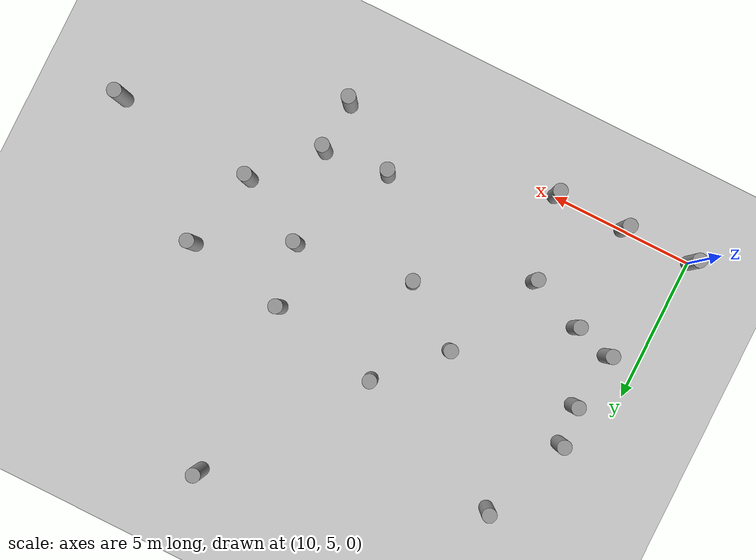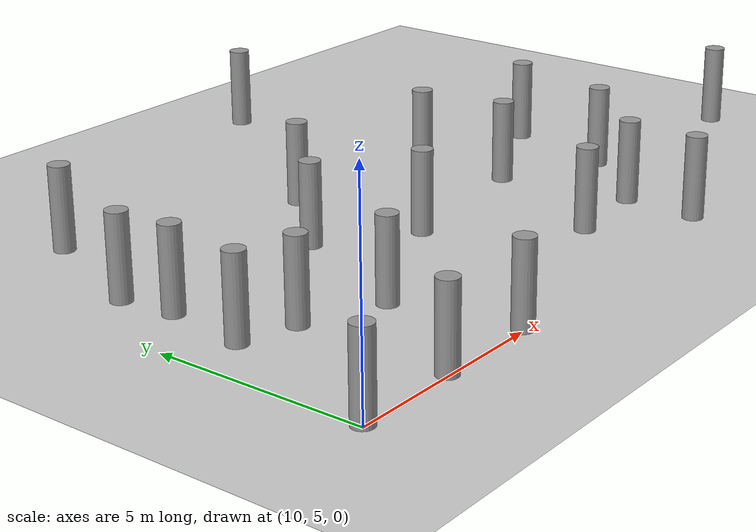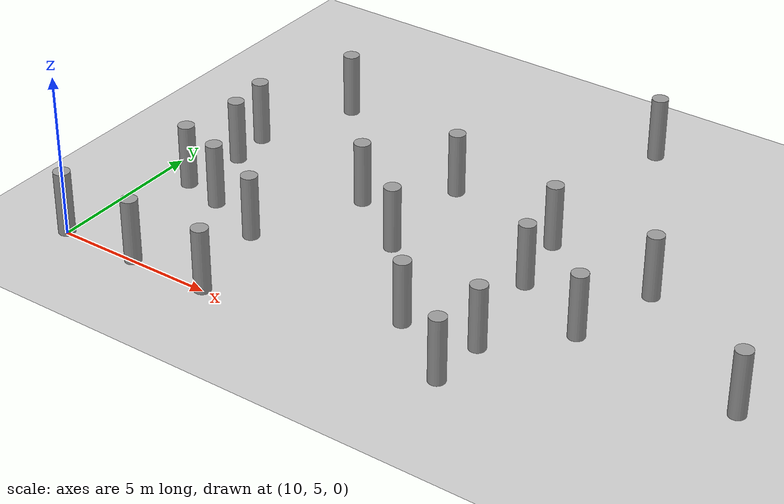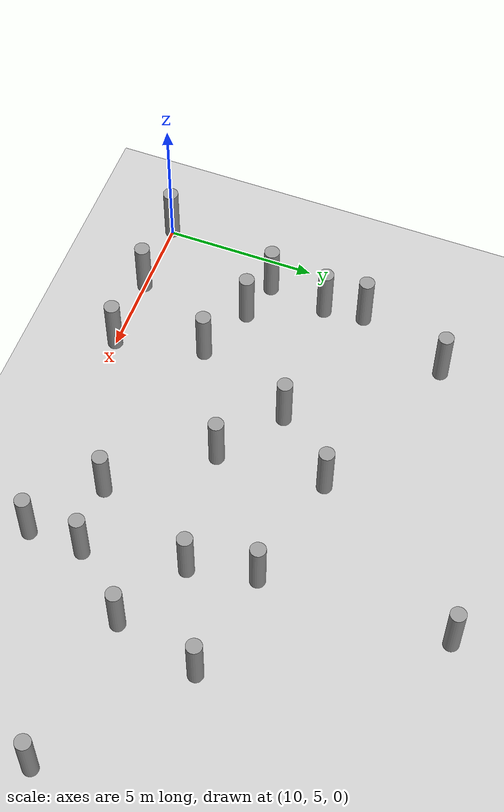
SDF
<sdf version="1.6">
 <world name="default">
  <model name="ground_plane">
   <static>1</static>
   <link name="link">
    <collision name="collision">
     <geometry><plane><normal>0 0 1</normal><size>100 100</size></plane></geometry>
     <surface><friction><ode><mu>100</mu><mu2>50</mu2></ode></friction></surface>
    </collision>
    <visual name="visual">
     <cast_shadows>0</cast_shadows>
     <geometry><plane><normal>0 0 1</normal><size>100 100</size></plane></geometry>
     <material>
      <script><uri>file://media/materials/scripts/gazebo.material</uri><name>Gazebo/Grey</name></script>
     </material>
    </visual>
   </link>
  </model>
  <model name="vps_sim_obstacle_13">
   <link name="link">
    <inertial>
     <mass>1</mass>
     <inertia><ixx>0.145833</ixx><ixy>0</ixy><ixz>0</ixz><iyy>0.145833</iyy><iyz>0</iyz><izz>0.125</izz></inertia>
    </inertial>
    <visual name="visual">
     <geometry><cylinder><radius>0.25</radius><length>2</length></cylinder></geometry>
     <material>
      <script><name>Gazebo/Grey</name><uri>file://media/materials/scripts/gazebo.material</uri></script>
      <ambient>0.3 0.3 0.3 1</ambient>
      <diffuse>0.7 0.7 0.7 1</diffuse>
      <specular>0.01 0.01 0.01 1</specular>
      <emissive>0 0 0 1</emissive>
      <shader type="vertex"><normal_map>__default__</normal_map></shader>
     </material>
    </visual>
    <collision name="collision">
     <geometry><cylinder><radius>0.25</radius><length>2</length></cylinder></geometry>
     <surface>
      <friction>
       <ode><mu>1</mu><mu2>1</mu2><fdir1>0 0 0</fdir1><slip1>0</slip1><slip2>0</slip2></ode>
       <torsional>
        <coefficient>1</coefficient>
        <patch_radius>0</patch_radius>
        <surface_radius>0</surface_radius>
        <use_patch_radius>1</use_patch_radius>
        <ode><slip>0</slip></ode>
       </torsional>
      </friction>
      <bounce><restitution_coefficient>0</restitution_coefficient><threshold>1e+06</threshold></bounce>
      <contact>
       <collide_without_contact>0</collide_without_contact>
       <collide_without_contact_bitmask>1</collide_without_contact_bitmask>
       <collide_bitmask>1</collide_bitmask>
       <ode>
        <soft_cfm>0</soft_cfm>
        <soft_erp>0.2</soft_erp>
        <kp>1e+13</kp>
        <kd>1</kd>
        <max_vel>0.01</max_vel>
        <min_depth>0</min_depth>
       </ode>
       <bullet>
        <split_impulse>1</split_impulse>
        <split_impulse_penetration_threshold>-0.01</split_impulse_penetration_threshold>
        <soft_cfm>0</soft_cfm>
        <soft_erp>0.2</soft_erp>
        <kp>1e+13</kp>
        <kd>1</kd>
       </bullet>
      </contact>
     </surface>
    </collision>
   </link>
   <static>0</static>
   <pose>10.002 4.9978 1.04998 1e-06 6e-06 0.043152</pose>
  </model>
  <model name="vps_sim_obstacle_14">
   <link name="link">
    <inertial>
     <mass>1</mass>
     <inertia><ixx>0.145833</ixx><ixy>0</ixy><ixz>0</ixz><iyy>0.145833</iyy><iyz>0</iyz><izz>0.125</izz></inertia>
    </inertial>
    <visual name="visual">
     <geometry><cylinder><radius>0.25</radius><length>2</length></cylinder></geometry>
     <material>
      <script><name>Gazebo/Grey</name><uri>file://media/materials/scripts/gazebo.material</uri></script>
      <ambient>0.3 0.3 0.3 1</ambient>
      <diffuse>0.7 0.7 0.7 1</diffuse>
      <specular>0.01 0.01 0.01 1</specular>
      <emissive>0 0 0 1</emissive>
      <shader type="vertex"><normal_map>__default__</normal_map></shader>
     </material>
    </visual>
    <collision name="collision">
     <geometry><cylinder><radius>0.25</radius><length>2</length></cylinder></geometry>
     <surface>
      <friction>
       <ode><mu>1</mu><mu2>1</mu2><fdir1>0 0 0</fdir1><slip1>0</slip1><slip2>0</slip2></ode>
       <torsional>
        <coefficient>1</coefficient>
        <patch_radius>0</patch_radius>
        <surface_radius>0</surface_radius>
        <use_patch_radius>1</use_patch_radius>
        <ode><slip>0</slip></ode>
       </torsional>
      </friction>
      <bounce><restitution_coefficient>0</restitution_coefficient><threshold>1e+06</threshold></bounce>
      <contact>
       <collide_without_contact>0</collide_without_contact>
       <collide_without_contact_bitmask>1</collide_without_contact_bitmask>
       <collide_bitmask>1</collide_bitmask>
       <ode>
        <soft_cfm>0</soft_cfm>
        <soft_erp>0.2</soft_erp>
        <kp>1e+13</kp>
        <kd>1</kd>
        <max_vel>0.01</max_vel>
        <min_depth>0</min_depth>
       </ode>
       <bullet>
        <split_impulse>1</split_impulse>
        <split_impulse_penetration_threshold>-0.01</split_impulse_penetration_threshold>
        <soft_cfm>0</soft_cfm>
        <soft_erp>0.2</soft_erp>
        <kp>1e+13</kp>
        <kd>1</kd>
       </bullet>
      </contact>
     </surface>
    </collision>
   </link>
   <static>0</static>
   <pose>12.5021 4.99784 1.04997 3e-05 -3.4e-05 0.041339</pose>
  </model>
  <model name="vps_sim_obstacle_15">
   <link name="link">
    <inertial>
     <mass>1</mass>
     <inertia><ixx>0.145833</ixx><ixy>0</ixy><ixz>0</ixz><iyy>0.145833</iyy><iyz>0</iyz><izz>0.125</izz></inertia>
    </inertial>
    <visual name="visual">
     <geometry><cylinder><radius>0.25</radius><length>2</length></cylinder></geometry>
     <material>
      <script><name>Gazebo/Grey</name><uri>file://media/materials/scripts/gazebo.material</uri></script>
      <ambient>0.3 0.3 0.3 1</ambient>
      <diffuse>0.7 0.7 0.7 1</diffuse>
      <specular>0.01 0.01 0.01 1</specular>
      <emissive>0 0 0 1</emissive>
      <shader type="vertex"><normal_map>__default__</normal_map></shader>
     </material>
    </visual>
    <collision name="collision">
     <geometry><cylinder><radius>0.25</radius><length>2</length></cylinder></geometry>
     <surface>
      <friction>
       <ode><mu>1</mu><mu2>1</mu2><fdir1>0 0 0</fdir1><slip1>0</slip1><slip2>0</slip2></ode>
       <torsional>
        <coefficient>1</coefficient>
        <patch_radius>0</patch_radius>
        <surface_radius>0</surface_radius>
        <use_patch_radius>1</use_patch_radius>
        <ode><slip>0</slip></ode>
       </torsional>
      </friction>
      <bounce><restitution_coefficient>0</restitution_coefficient><threshold>1e+06</threshold></bounce>
      <contact>
       <collide_without_contact>0</collide_without_contact>
       <collide_without_contact_bitmask>1</collide_without_contact_bitmask>
       <collide_bitmask>1</collide_bitmask>
       <ode>
        <soft_cfm>0</soft_cfm>
        <soft_erp>0.2</soft_erp>
        <kp>1e+13</kp>
        <kd>1</kd>
        <max_vel>0.01</max_vel>
        <min_depth>0</min_depth>
       </ode>
       <bullet>
        <split_impulse>1</split_impulse>
        <split_impulse_penetration_threshold>-0.01</split_impulse_penetration_threshold>
        <soft_cfm>0</soft_cfm>
        <soft_erp>0.2</soft_erp>
        <kp>1e+13</kp>
        <kd>1</kd>
       </bullet>
      </contact>
     </surface>
    </collision>
   </link>
   <static>0</static>
   <pose>15.0152 4.99462 1.05001 -1.5e-05 1.9e-05 0.050964</pose>
  </model>
  <model name="vps_sim_obstacle_17">
   <link name="link">
    <inertial>
     <mass>1</mass>
     <inertia><ixx>0.145833</ixx><ixy>0</ixy><ixz>0</ixz><iyy>0.145833</iyy><iyz>0</iyz><izz>0.125</izz></inertia>
    </inertial>
    <visual name="visual">
     <geometry><cylinder><radius>0.25</radius><length>2</length></cylinder></geometry>
     <material>
      <script><name>Gazebo/Grey</name><uri>file://media/materials/scripts/gazebo.material</uri></script>
      <ambient>0.3 0.3 0.3 1</ambient>
      <diffuse>0.7 0.7 0.7 1</diffuse>
      <specular>0.01 0.01 0.01 1</specular>
      <emissive>0 0 0 1</emissive>
      <shader type="vertex"><normal_map>__default__</normal_map></shader>
     </material>
    </visual>
    <collision name="collision">
     <geometry><cylinder><radius>0.25</radius><length>2</length></cylinder></geometry>
     <surface>
      <friction>
       <ode><mu>1</mu><mu2>1</mu2><fdir1>0 0 0</fdir1><slip1>0</slip1><slip2>0</slip2></ode>
       <torsional>
        <coefficient>1</coefficient>
        <patch_radius>0</patch_radius>
        <surface_radius>0</surface_radius>
        <use_patch_radius>1</use_patch_radius>
        <ode><slip>0</slip></ode>
       </torsional>
      </friction>
      <bounce><restitution_coefficient>0</restitution_coefficient><threshold>1e+06</threshold></bounce>
      <contact>
       <collide_without_contact>0</collide_without_contact>
       <collide_without_contact_bitmask>1</collide_without_contact_bitmask>
       <collide_bitmask>1</collide_bitmask>
       <ode>
        <soft_cfm>0</soft_cfm>
        <soft_erp>0.2</soft_erp>
        <kp>1e+13</kp>
        <kd>1</kd>
        <max_vel>0.01</max_vel>
        <min_depth>0</min_depth>
       </ode>
       <bullet>
        <split_impulse>1</split_impulse>
        <split_impulse_penetration_threshold>-0.01</split_impulse_penetration_threshold>
        <soft_cfm>0</soft_cfm>
        <soft_erp>0.2</soft_erp>
        <kp>1e+13</kp>
        <kd>1</kd>
       </bullet>
      </contact>
     </surface>
    </collision>
   </link>
   <static>0</static>
   <pose>11.1253 9.02512 1.05 -7e-06 -1.4e-05 0.049007</pose>
  </model>
  <model name="vps_sim_obstacle_18">
   <link name="link">
    <inertial>
     <mass>1</mass>
     <inertia><ixx>0.145833</ixx><ixy>0</ixy><ixz>0</ixz><iyy>0.145833</iyy><iyz>0</iyz><izz>0.125</izz></inertia>
    </inertial>
    <visual name="visual">
     <geometry><cylinder><radius>0.25</radius><length>2</length></cylinder></geometry>
     <material>
      <script><name>Gazebo/Grey</name><uri>file://media/materials/scripts/gazebo.material</uri></script>
      <ambient>0.3 0.3 0.3 1</ambient>
      <diffuse>0.7 0.7 0.7 1</diffuse>
      <specular>0.01 0.01 0.01 1</specular>
      <emissive>0 0 0 1</emissive>
      <shader type="vertex"><normal_map>__default__</normal_map></shader>
     </material>
    </visual>
    <collision name="collision">
     <geometry><cylinder><radius>0.25</radius><length>2</length></cylinder></geometry>
     <surface>
      <friction>
       <ode><mu>1</mu><mu2>1</mu2><fdir1>0 0 0</fdir1><slip1>0</slip1><slip2>0</slip2></ode>
       <torsional>
        <coefficient>1</coefficient>
        <patch_radius>0</patch_radius>
        <surface_radius>0</surface_radius>
        <use_patch_radius>1</use_patch_radius>
        <ode><slip>0</slip></ode>
       </torsional>
      </friction>
      <bounce><restitution_coefficient>0</restitution_coefficient><threshold>1e+06</threshold></bounce>
      <contact>
       <collide_without_contact>0</collide_without_contact>
       <collide_without_contact_bitmask>1</collide_without_contact_bitmask>
       <collide_bitmask>1</collide_bitmask>
       <ode>
        <soft_cfm>0</soft_cfm>
        <soft_erp>0.2</soft_erp>
        <kp>1e+13</kp>
        <kd>1</kd>
        <max_vel>0.01</max_vel>
        <min_depth>0</min_depth>
       </ode>
       <bullet>
        <split_impulse>1</split_impulse>
        <split_impulse_penetration_threshold>-0.01</split_impulse_penetration_threshold>
        <soft_cfm>0</soft_cfm>
        <soft_erp>0.2</soft_erp>
        <kp>1e+13</kp>
        <kd>1</kd>
       </bullet>
      </contact>
     </surface>
    </collision>
   </link>
   <static>0</static>
   <pose>11.2269 12.3272 1.04999 2.4e-05 -3.2e-05 0.047547</pose>
  </model>
  <model name="vps_sim_obstacle_20">
   <link name="link">
    <inertial>
     <mass>1</mass>
     <inertia><ixx>0.145833</ixx><ixy>0</ixy><ixz>0</ixz><iyy>0.145833</iyy><iyz>0</iyz><izz>0.125</izz></inertia>
    </inertial>
    <visual name="visual">
     <geometry><cylinder><radius>0.25</radius><length>2</length></cylinder></geometry>
     <material>
      <script><name>Gazebo/Grey</name><uri>file://media/materials/scripts/gazebo.material</uri></script>
      <ambient>0.3 0.3 0.3 1</ambient>
      <diffuse>0.7 0.7 0.7 1</diffuse>
      <specular>0.01 0.01 0.01 1</specular>
      <emissive>0 0 0 1</emissive>
      <shader type="vertex"><normal_map>__default__</normal_map></shader>
     </material>
    </visual>
    <collision name="collision">
     <geometry><cylinder><radius>0.25</radius><length>2</length></cylinder></geometry>
     <surface>
      <friction>
       <ode><mu>1</mu><mu2>1</mu2><fdir1>0 0 0</fdir1><slip1>0</slip1><slip2>0</slip2></ode>
       <torsional>
        <coefficient>1</coefficient>
        <patch_radius>0</patch_radius>
        <surface_radius>0</surface_radius>
        <use_patch_radius>1</use_patch_radius>
        <ode><slip>0</slip></ode>
       </torsional>
      </friction>
      <bounce><restitution_coefficient>0</restitution_coefficient><threshold>1e+06</threshold></bounce>
      <contact>
       <collide_without_contact>0</collide_without_contact>
       <collide_without_contact_bitmask>1</collide_without_contact_bitmask>
       <collide_bitmask>1</collide_bitmask>
       <ode>
        <soft_cfm>0</soft_cfm>
        <soft_erp>0.2</soft_erp>
        <kp>1e+13</kp>
        <kd>1</kd>
        <max_vel>0.01</max_vel>
        <min_depth>0</min_depth>
       </ode>
       <bullet>
        <split_impulse>1</split_impulse>
        <split_impulse_penetration_threshold>-0.01</split_impulse_penetration_threshold>
        <soft_cfm>0</soft_cfm>
        <soft_erp>0.2</soft_erp>
        <kp>1e+13</kp>
        <kd>1</kd>
       </bullet>
      </contact>
     </surface>
    </collision>
   </link>
   <static>0</static>
   <pose>17.9721 9.71438 1.05 -5e-06 1.1e-05 0.029575</pose>
  </model>
  <model name="vps_sim_obstacle_22">
   <link name="link">
    <inertial>
     <mass>1</mass>
     <inertia><ixx>0.145833</ixx><ixy>0</ixy><ixz>0</ixz><iyy>0.145833</iyy><iyz>0</iyz><izz>0.125</izz></inertia>
    </inertial>
    <visual name="visual">
     <geometry><cylinder><radius>0.25</radius><length>2</length></cylinder></geometry>
     <material>
      <script><name>Gazebo/Grey</name><uri>file://media/materials/scripts/gazebo.material</uri></script>
      <ambient>0.3 0.3 0.3 1</ambient>
      <diffuse>0.7 0.7 0.7 1</diffuse>
      <specular>0.01 0.01 0.01 1</specular>
      <emissive>0 0 0 1</emissive>
      <shader type="vertex"><normal_map>__default__</normal_map></shader>
     </material>
    </visual>
    <collision name="collision">
     <geometry><cylinder><radius>0.25</radius><length>2</length></cylinder></geometry>
     <surface>
      <friction>
       <ode><mu>1</mu><mu2>1</mu2><fdir1>0 0 0</fdir1><slip1>0</slip1><slip2>0</slip2></ode>
       <torsional>
        <coefficient>1</coefficient>
        <patch_radius>0</patch_radius>
        <surface_radius>0</surface_radius>
        <use_patch_radius>1</use_patch_radius>
        <ode><slip>0</slip></ode>
       </torsional>
      </friction>
      <bounce><restitution_coefficient>0</restitution_coefficient><threshold>1e+06</threshold></bounce>
      <contact>
       <collide_without_contact>0</collide_without_contact>
       <collide_without_contact_bitmask>1</collide_without_contact_bitmask>
       <collide_bitmask>1</collide_bitmask>
       <ode>
        <soft_cfm>0</soft_cfm>
        <soft_erp>0.2</soft_erp>
        <kp>1e+13</kp>
        <kd>1</kd>
        <max_vel>0.01</max_vel>
        <min_depth>0</min_depth>
       </ode>
       <bullet>
        <split_impulse>1</split_impulse>
        <split_impulse_penetration_threshold>-0.01</split_impulse_penetration_threshold>
        <soft_cfm>0</soft_cfm>
        <soft_erp>0.2</soft_erp>
        <kp>1e+13</kp>
        <kd>1</kd>
       </bullet>
      </contact>
     </surface>
    </collision>
   </link>
   <static>0</static>
   <pose>17.7788 13.2236 1.04999 -2.3e-05 -1.9e-05 0.035346</pose>
  </model>
  <model name="vps_sim_obstacle_23">
   <link name="link">
    <inertial>
     <mass>1</mass>
     <inertia><ixx>0.145833</ixx><ixy>0</ixy><ixz>0</ixz><iyy>0.145833</iyy><iyz>0</iyz><izz>0.125</izz></inertia>
    </inertial>
    <visual name="visual">
     <geometry><cylinder><radius>0.25</radius><length>2</length></cylinder></geometry>
     <material>
      <script><name>Gazebo/Grey</name><uri>file://media/materials/scripts/gazebo.material</uri></script>
      <ambient>0.3 0.3 0.3 1</ambient>
      <diffuse>0.7 0.7 0.7 1</diffuse>
      <specular>0.01 0.01 0.01 1</specular>
      <emissive>0 0 0 1</emissive>
      <shader type="vertex"><normal_map>__default__</normal_map></shader>
     </material>
    </visual>
    <collision name="collision">
     <geometry><cylinder><radius>0.25</radius><length>2</length></cylinder></geometry>
     <surface>
      <friction>
       <ode><mu>1</mu><mu2>1</mu2><fdir1>0 0 0</fdir1><slip1>0</slip1><slip2>0</slip2></ode>
       <torsional>
        <coefficient>1</coefficient>
        <patch_radius>0</patch_radius>
        <surface_radius>0</surface_radius>
        <use_patch_radius>1</use_patch_radius>
        <ode><slip>0</slip></ode>
       </torsional>
      </friction>
      <bounce><restitution_coefficient>0</restitution_coefficient><threshold>1e+06</threshold></bounce>
      <contact>
       <collide_without_contact>0</collide_without_contact>
       <collide_without_contact_bitmask>1</collide_without_contact_bitmask>
       <collide_bitmask>1</collide_bitmask>
       <ode>
        <soft_cfm>0</soft_cfm>
        <soft_erp>0.2</soft_erp>
        <kp>1e+13</kp>
        <kd>1</kd>
        <max_vel>0.01</max_vel>
        <min_depth>0</min_depth>
       </ode>
       <bullet>
        <split_impulse>1</split_impulse>
        <split_impulse_penetration_threshold>-0.01</split_impulse_penetration_threshold>
        <soft_cfm>0</soft_cfm>
        <soft_erp>0.2</soft_erp>
        <kp>1e+13</kp>
        <kd>1</kd>
       </bullet>
      </contact>
     </surface>
    </collision>
   </link>
   <static>0</static>
   <pose>22.5474 7.10349 1.04997 -1.3e-05 1.5e-05 0.032547</pose>
  </model>
  <model name="vps_sim_obstacle_24">
   <link name="link">
    <inertial>
     <mass>1</mass>
     <inertia><ixx>0.145833</ixx><ixy>0</ixy><ixz>0</ixz><iyy>0.145833</iyy><iyz>0</iyz><izz>0.125</izz></inertia>
    </inertial>
    <visual name="visual">
     <geometry><cylinder><radius>0.25</radius><length>2</length></cylinder></geometry>
     <material>
      <script><name>Gazebo/Grey</name><uri>file://media/materials/scripts/gazebo.material</uri></script>
      <ambient>0.3 0.3 0.3 1</ambient>
      <diffuse>0.7 0.7 0.7 1</diffuse>
      <specular>0.01 0.01 0.01 1</specular>
      <emissive>0 0 0 1</emissive>
      <shader type="vertex"><normal_map>__default__</normal_map></shader>
     </material>
    </visual>
    <collision name="collision">
     <geometry><cylinder><radius>0.25</radius><length>2</length></cylinder></geometry>
     <surface>
      <friction>
       <ode><mu>1</mu><mu2>1</mu2><fdir1>0 0 0</fdir1><slip1>0</slip1><slip2>0</slip2></ode>
       <torsional>
        <coefficient>1</coefficient>
        <patch_radius>0</patch_radius>
        <surface_radius>0</surface_radius>
        <use_patch_radius>1</use_patch_radius>
        <ode><slip>0</slip></ode>
       </torsional>
      </friction>
      <bounce><restitution_coefficient>0</restitution_coefficient><threshold>1e+06</threshold></bounce>
      <contact>
       <collide_without_contact>0</collide_without_contact>
       <collide_without_contact_bitmask>1</collide_without_contact_bitmask>
       <collide_bitmask>1</collide_bitmask>
       <ode>
        <soft_cfm>0</soft_cfm>
        <soft_erp>0.2</soft_erp>
        <kp>1e+13</kp>
        <kd>1</kd>
        <max_vel>0.01</max_vel>
        <min_depth>0</min_depth>
       </ode>
       <bullet>
        <split_impulse>1</split_impulse>
        <split_impulse_penetration_threshold>-0.01</split_impulse_penetration_threshold>
        <soft_cfm>0</soft_cfm>
        <soft_erp>0.2</soft_erp>
        <kp>1e+13</kp>
        <kd>1</kd>
       </bullet>
      </contact>
     </surface>
    </collision>
   </link>
   <static>0</static>
   <pose>24.3732 9.05682 1.04997 1.8e-05 -2e-06 0.025335</pose>
  </model>
  <model name="vps_sim_obstacle_25">
   <link name="link">
    <inertial>
     <mass>1</mass>
     <inertia><ixx>0.145833</ixx><ixy>0</ixy><ixz>0</ixz><iyy>0.145833</iyy><iyz>0</iyz><izz>0.125</izz></inertia>
    </inertial>
    <visual name="visual">
     <geometry><cylinder><radius>0.25</radius><length>2</length></cylinder></geometry>
     <material>
      <script><name>Gazebo/Grey</name><uri>file://media/materials/scripts/gazebo.material</uri></script>
      <ambient>0.3 0.3 0.3 1</ambient>
      <diffuse>0.7 0.7 0.7 1</diffuse>
      <specular>0.01 0.01 0.01 1</specular>
      <emissive>0 0 0 1</emissive>
      <shader type="vertex"><normal_map>__default__</normal_map></shader>
     </material>
    </visual>
    <collision name="collision">
     <geometry><cylinder><radius>0.25</radius><length>2</length></cylinder></geometry>
     <surface>
      <friction>
       <ode><mu>1</mu><mu2>1</mu2><fdir1>0 0 0</fdir1><slip1>0</slip1><slip2>0</slip2></ode>
       <torsional>
        <coefficient>1</coefficient>
        <patch_radius>0</patch_radius>
        <surface_radius>0</surface_radius>
        <use_patch_radius>1</use_patch_radius>
        <ode><slip>0</slip></ode>
       </torsional>
      </friction>
      <bounce><restitution_coefficient>0</restitution_coefficient><threshold>1e+06</threshold></bounce>
      <contact>
       <collide_without_contact>0</collide_without_contact>
       <collide_without_contact_bitmask>1</collide_without_contact_bitmask>
       <collide_bitmask>1</collide_bitmask>
       <ode>
        <soft_cfm>0</soft_cfm>
        <soft_erp>0.2</soft_erp>
        <kp>1e+13</kp>
        <kd>1</kd>
        <max_vel>0.01</max_vel>
        <min_depth>0</min_depth>
       </ode>
       <bullet>
        <split_impulse>1</split_impulse>
        <split_impulse_penetration_threshold>-0.01</split_impulse_penetration_threshold>
        <soft_cfm>0</soft_cfm>
        <soft_erp>0.2</soft_erp>
        <kp>1e+13</kp>
        <kd>1</kd>
       </bullet>
      </contact>
     </surface>
    </collision>
   </link>
   <static>0</static>
   <pose>20.3128 6.8739 1.05 0 -1.2e-05 0.042014</pose>
  </model>
  <model name="vps_sim_obstacle_26">
   <link name="link">
    <inertial>
     <mass>1</mass>
     <inertia><ixx>0.145833</ixx><ixy>0</ixy><ixz>0</ixz><iyy>0.145833</iyy><iyz>0</iyz><izz>0.125</izz></inertia>
    </inertial>
    <visual name="visual">
     <geometry><cylinder><radius>0.25</radius><length>2</length></cylinder></geometry>
     <material>
      <script><name>Gazebo/Grey</name><uri>file://media/materials/scripts/gazebo.material</uri></script>
      <ambient>0.3 0.3 0.3 1</ambient>
      <diffuse>0.7 0.7 0.7 1</diffuse>
      <specular>0.01 0.01 0.01 1</specular>
      <emissive>0 0 0 1</emissive>
      <shader type="vertex"><normal_map>__default__</normal_map></shader>
     </material>
    </visual>
    <collision name="collision">
     <geometry><cylinder><radius>0.25</radius><length>2</length></cylinder></geometry>
     <surface>
      <friction>
       <ode><mu>1</mu><mu2>1</mu2><fdir1>0 0 0</fdir1><slip1>0</slip1><slip2>0</slip2></ode>
       <torsional>
        <coefficient>1</coefficient>
        <patch_radius>0</patch_radius>
        <surface_radius>0</surface_radius>
        <use_patch_radius>1</use_patch_radius>
        <ode><slip>0</slip></ode>
       </torsional>
      </friction>
      <bounce><restitution_coefficient>0</restitution_coefficient><threshold>1e+06</threshold></bounce>
      <contact>
       <collide_without_contact>0</collide_without_contact>
       <collide_without_contact_bitmask>1</collide_without_contact_bitmask>
       <collide_bitmask>1</collide_bitmask>
       <ode>
        <soft_cfm>0</soft_cfm>
        <soft_erp>0.2</soft_erp>
        <kp>1e+13</kp>
        <kd>1</kd>
        <max_vel>0.01</max_vel>
        <min_depth>0</min_depth>
       </ode>
       <bullet>
        <split_impulse>1</split_impulse>
        <split_impulse_penetration_threshold>-0.01</split_impulse_penetration_threshold>
        <soft_cfm>0</soft_cfm>
        <soft_erp>0.2</soft_erp>
        <kp>1e+13</kp>
        <kd>1</kd>
       </bullet>
      </contact>
     </surface>
    </collision>
   </link>
   <static>0</static>
   <pose>21.9961 10.297 1.04997 -9e-06 9e-06 0.035064</pose>
  </model>
  <model name="vps_sim_obstacle_27">
   <link name="link">
    <inertial>
     <mass>1</mass>
     <inertia><ixx>0.145833</ixx><ixy>0</ixy><ixz>0</ixz><iyy>0.145833</iyy><iyz>0</iyz><izz>0.125</izz></inertia>
    </inertial>
    <visual name="visual">
     <geometry><cylinder><radius>0.25</radius><length>2</length></cylinder></geometry>
     <material>
      <script><name>Gazebo/Grey</name><uri>file://media/materials/scripts/gazebo.material</uri></script>
      <ambient>0.3 0.3 0.3 1</ambient>
      <diffuse>0.7 0.7 0.7 1</diffuse>
      <specular>0.01 0.01 0.01 1</specular>
      <emissive>0 0 0 1</emissive>
      <shader type="vertex"><normal_map>__default__</normal_map></shader>
     </material>
    </visual>
    <collision name="collision">
     <geometry><cylinder><radius>0.25</radius><length>2</length></cylinder></geometry>
     <surface>
      <friction>
       <ode><mu>1</mu><mu2>1</mu2><fdir1>0 0 0</fdir1><slip1>0</slip1><slip2>0</slip2></ode>
       <torsional>
        <coefficient>1</coefficient>
        <patch_radius>0</patch_radius>
        <surface_radius>0</surface_radius>
        <use_patch_radius>1</use_patch_radius>
        <ode><slip>0</slip></ode>
       </torsional>
      </friction>
      <bounce><restitution_coefficient>0</restitution_coefficient><threshold>1e+06</threshold></bounce>
      <contact>
       <collide_without_contact>0</collide_without_contact>
       <collide_without_contact_bitmask>1</collide_without_contact_bitmask>
       <collide_bitmask>1</collide_bitmask>
       <ode>
        <soft_cfm>0</soft_cfm>
        <soft_erp>0.2</soft_erp>
        <kp>1e+13</kp>
        <kd>1</kd>
        <max_vel>0.01</max_vel>
        <min_depth>0</min_depth>
       </ode>
       <bullet>
        <split_impulse>1</split_impulse>
        <split_impulse_penetration_threshold>-0.01</split_impulse_penetration_threshold>
        <soft_cfm>0</soft_cfm>
        <soft_erp>0.2</soft_erp>
        <kp>1e+13</kp>
        <kd>1</kd>
       </bullet>
      </contact>
     </surface>
    </collision>
   </link>
   <static>0</static>
   <pose>21.5687 12.4214 1.05 -7e-06 6e-06 0.051035</pose>
  </model>
  <model name="vps_sim_obstacle_29">
   <link name="link">
    <inertial>
     <mass>1</mass>
     <inertia><ixx>0.145833</ixx><ixy>0</ixy><ixz>0</ixz><iyy>0.145833</iyy><iyz>0</iyz><izz>0.125</izz></inertia>
    </inertial>
    <visual name="visual">
     <geometry><cylinder><radius>0.25</radius><length>2</length></cylinder></geometry>
     <material>
      <script><name>Gazebo/Grey</name><uri>file://media/materials/scripts/gazebo.material</uri></script>
      <ambient>0.3 0.3 0.3 1</ambient>
      <diffuse>0.7 0.7 0.7 1</diffuse>
      <specular>0.01 0.01 0.01 1</specular>
      <emissive>0 0 0 1</emissive>
      <shader type="vertex"><normal_map>__default__</normal_map></shader>
     </material>
    </visual>
    <collision name="collision">
     <geometry><cylinder><radius>0.25</radius><length>2</length></cylinder></geometry>
     <surface>
      <friction>
       <ode><mu>1</mu><mu2>1</mu2><fdir1>0 0 0</fdir1><slip1>0</slip1><slip2>0</slip2></ode>
       <torsional>
        <coefficient>1</coefficient>
        <patch_radius>0</patch_radius>
        <surface_radius>0</surface_radius>
        <use_patch_radius>1</use_patch_radius>
        <ode><slip>0</slip></ode>
       </torsional>
      </friction>
      <bounce><restitution_coefficient>0</restitution_coefficient><threshold>1e+06</threshold></bounce>
      <contact>
       <collide_without_contact>0</collide_without_contact>
       <collide_without_contact_bitmask>1</collide_without_contact_bitmask>
       <collide_bitmask>1</collide_bitmask>
       <ode>
        <soft_cfm>0</soft_cfm>
        <soft_erp>0.2</soft_erp>
        <kp>1e+13</kp>
        <kd>1</kd>
        <max_vel>0.01</max_vel>
        <min_depth>0</min_depth>
       </ode>
       <bullet>
        <split_impulse>1</split_impulse>
        <split_impulse_penetration_threshold>-0.01</split_impulse_penetration_threshold>
        <soft_cfm>0</soft_cfm>
        <soft_erp>0.2</soft_erp>
        <kp>1e+13</kp>
        <kd>1</kd>
       </bullet>
      </contact>
     </surface>
    </collision>
   </link>
   <static>0</static>
   <pose>15.8681 11.1897 1.04998 -2e-06 6e-06 0.043448</pose>
  </model>
  <model name="vps_sim_obstacle_32">
   <link name="link">
    <inertial>
     <mass>1</mass>
     <inertia><ixx>0.145833</ixx><ixy>0</ixy><ixz>0</ixz><iyy>0.145833</iyy><iyz>0</iyz><izz>0.125</izz></inertia>
    </inertial>
    <visual name="visual">
     <geometry><cylinder><radius>0.25</radius><length>2</length></cylinder></geometry>
     <material>
      <script><name>Gazebo/Grey</name><uri>file://media/materials/scripts/gazebo.material</uri></script>
      <ambient>0.3 0.3 0.3 1</ambient>
      <diffuse>0.7 0.7 0.7 1</diffuse>
      <specular>0.01 0.01 0.01 1</specular>
      <emissive>0 0 0 1</emissive>
      <shader type="vertex"><normal_map>__default__</normal_map></shader>
     </material>
    </visual>
    <collision name="collision">
     <geometry><cylinder><radius>0.25</radius><length>2</length></cylinder></geometry>
     <surface>
      <friction>
       <ode><mu>1</mu><mu2>1</mu2><fdir1>0 0 0</fdir1><slip1>0</slip1><slip2>0</slip2></ode>
       <torsional>
        <coefficient>1</coefficient>
        <patch_radius>0</patch_radius>
        <surface_radius>0</surface_radius>
        <use_patch_radius>1</use_patch_radius>
        <ode><slip>0</slip></ode>
       </torsional>
      </friction>
      <bounce><restitution_coefficient>0</restitution_coefficient><threshold>1e+06</threshold></bounce>
      <contact>
       <collide_without_contact>0</collide_without_contact>
       <collide_without_contact_bitmask>1</collide_without_contact_bitmask>
       <collide_bitmask>1</collide_bitmask>
       <ode>
        <soft_cfm>0</soft_cfm>
        <soft_erp>0.2</soft_erp>
        <kp>1e+13</kp>
        <kd>1</kd>
        <max_vel>0.01</max_vel>
        <min_depth>0</min_depth>
       </ode>
       <bullet>
        <split_impulse>1</split_impulse>
        <split_impulse_penetration_threshold>-0.01</split_impulse_penetration_threshold>
        <soft_cfm>0</soft_cfm>
        <soft_erp>0.2</soft_erp>
        <kp>1e+13</kp>
        <kd>1</kd>
       </bullet>
      </contact>
     </surface>
    </collision>
   </link>
   <static>0</static>
   <pose>14.3809 7.88404 1.05 3e-06 -9e-06 0.036419</pose>
  </model>
  <model name="vps_sim_obstacle_36">
   <link name="link">
    <inertial>
     <mass>1</mass>
     <inertia><ixx>0.145833</ixx><ixy>0</ixy><ixz>0</ixz><iyy>0.145833</iyy><iyz>0</iyz><izz>0.125</izz></inertia>
    </inertial>
    <visual name="visual">
     <geometry><cylinder><radius>0.25</radius><length>2</length></cylinder></geometry>
     <material>
      <script><name>Gazebo/Grey</name><uri>file://media/materials/scripts/gazebo.material</uri></script>
      <ambient>0.3 0.3 0.3 1</ambient>
      <diffuse>0.7 0.7 0.7 1</diffuse>
      <specular>0.01 0.01 0.01 1</specular>
      <emissive>0 0 0 1</emissive>
      <shader type="vertex"><normal_map>__default__</normal_map></shader>
     </material>
    </visual>
    <collision name="collision">
     <geometry><cylinder><radius>0.25</radius><length>2</length></cylinder></geometry>
     <surface>
      <friction>
       <ode><mu>1</mu><mu2>1</mu2><fdir1>0 0 0</fdir1><slip1>0</slip1><slip2>0</slip2></ode>
       <torsional>
        <coefficient>1</coefficient>
        <patch_radius>0</patch_radius>
        <surface_radius>0</surface_radius>
        <use_patch_radius>1</use_patch_radius>
        <ode><slip>0</slip></ode>
       </torsional>
      </friction>
      <bounce><restitution_coefficient>0</restitution_coefficient><threshold>1e+06</threshold></bounce>
      <contact>
       <collide_without_contact>0</collide_without_contact>
       <collide_without_contact_bitmask>1</collide_without_contact_bitmask>
       <collide_bitmask>1</collide_bitmask>
       <ode>
        <soft_cfm>0</soft_cfm>
        <soft_erp>0.2</soft_erp>
        <kp>1e+13</kp>
        <kd>1</kd>
        <max_vel>0.01</max_vel>
        <min_depth>0</min_depth>
       </ode>
       <bullet>
        <split_impulse>1</split_impulse>
        <split_impulse_penetration_threshold>-0.01</split_impulse_penetration_threshold>
        <soft_cfm>0</soft_cfm>
        <soft_erp>0.2</soft_erp>
        <kp>1e+13</kp>
        <kd>1</kd>
       </bullet>
      </contact>
     </surface>
    </collision>
   </link>
   <static>0</static>
   <pose>12.4137 15.3489 1.05001 -2.1e-05 1.7e-05 0.053095</pose>
  </model>
  <model name="vps_sim_obstacle_38">
   <link name="link">
    <inertial>
     <mass>1</mass>
     <inertia><ixx>0.145833</ixx><ixy>0</ixy><ixz>0</ixz><iyy>0.145833</iyy><iyz>0</iyz><izz>0.125</izz></inertia>
    </inertial>
    <visual name="visual">
     <geometry><cylinder><radius>0.25</radius><length>2</length></cylinder></geometry>
     <material>
      <script><name>Gazebo/Grey</name><uri>file://media/materials/scripts/gazebo.material</uri></script>
      <ambient>0.3 0.3 0.3 1</ambient>
      <diffuse>0.7 0.7 0.7 1</diffuse>
      <specular>0.01 0.01 0.01 1</specular>
      <emissive>0 0 0 1</emissive>
      <shader type="vertex"><normal_map>__default__</normal_map></shader>
     </material>
    </visual>
    <collision name="collision">
     <geometry><cylinder><radius>0.25</radius><length>2</length></cylinder></geometry>
     <surface>
      <friction>
       <ode><mu>1</mu><mu2>1</mu2><fdir1>0 0 0</fdir1><slip1>0</slip1><slip2>0</slip2></ode>
       <torsional>
        <coefficient>1</coefficient>
        <patch_radius>0</patch_radius>
        <surface_radius>0</surface_radius>
        <use_patch_radius>1</use_patch_radius>
        <ode><slip>0</slip></ode>
       </torsional>
      </friction>
      <bounce><restitution_coefficient>0</restitution_coefficient><threshold>1e+06</threshold></bounce>
      <contact>
       <collide_without_contact>0</collide_without_contact>
       <collide_without_contact_bitmask>1</collide_without_contact_bitmask>
       <collide_bitmask>1</collide_bitmask>
       <ode>
        <soft_cfm>0</soft_cfm>
        <soft_erp>0.2</soft_erp>
        <kp>1e+13</kp>
        <kd>1</kd>
        <max_vel>0.01</max_vel>
        <min_depth>0</min_depth>
       </ode>
       <bullet>
        <split_impulse>1</split_impulse>
        <split_impulse_penetration_threshold>-0.01</split_impulse_penetration_threshold>
        <soft_cfm>0</soft_cfm>
        <soft_erp>0.2</soft_erp>
        <kp>1e+13</kp>
        <kd>1</kd>
       </bullet>
      </contact>
     </surface>
    </collision>
   </link>
   <static>0</static>
   <pose>22.4914 5.31978 1.04998 -5e-06 1e-05 0.054702</pose>
  </model>
  <model name="vps_sim_obstacle_39">
   <link name="link">
    <inertial>
     <mass>1</mass>
     <inertia><ixx>0.145833</ixx><ixy>0</ixy><ixz>0</ixz><iyy>0.145833</iyy><iyz>0</iyz><izz>0.125</izz></inertia>
    </inertial>
    <visual name="visual">
     <geometry><cylinder><radius>0.25</radius><length>2</length></cylinder></geometry>
     <material>
      <script><name>Gazebo/Grey</name><uri>file://media/materials/scripts/gazebo.material</uri></script>
      <ambient>0.3 0.3 0.3 1</ambient>
      <diffuse>0.7 0.7 0.7 1</diffuse>
      <specular>0.01 0.01 0.01 1</specular>
      <emissive>0 0 0 1</emissive>
      <shader type="vertex"><normal_map>__default__</normal_map></shader>
     </material>
    </visual>
    <collision name="collision">
     <geometry><cylinder><radius>0.25</radius><length>2</length></cylinder></geometry>
     <surface>
      <friction>
       <ode><mu>1</mu><mu2>1</mu2><fdir1>0 0 0</fdir1><slip1>0</slip1><slip2>0</slip2></ode>
       <torsional>
        <coefficient>1</coefficient>
        <patch_radius>0</patch_radius>
        <surface_radius>0</surface_radius>
        <use_patch_radius>1</use_patch_radius>
        <ode><slip>0</slip></ode>
       </torsional>
      </friction>
      <bounce><restitution_coefficient>0</restitution_coefficient><threshold>1e+06</threshold></bounce>
      <contact>
       <collide_without_contact>0</collide_without_contact>
       <collide_without_contact_bitmask>1</collide_without_contact_bitmask>
       <collide_bitmask>1</collide_bitmask>
       <ode>
        <soft_cfm>0</soft_cfm>
        <soft_erp>0.2</soft_erp>
        <kp>1e+13</kp>
        <kd>1</kd>
        <max_vel>0.01</max_vel>
        <min_depth>0</min_depth>
       </ode>
       <bullet>
        <split_impulse>1</split_impulse>
        <split_impulse_penetration_threshold>-0.01</split_impulse_penetration_threshold>
        <soft_cfm>0</soft_cfm>
        <soft_erp>0.2</soft_erp>
        <kp>1e+13</kp>
        <kd>1</kd>
       </bullet>
      </contact>
     </surface>
    </collision>
   </link>
   <static>0</static>
   <pose>12.476 8.64775 1.04997 -1.9e-05 2.6e-05 0.054553</pose>
  </model>
  <model name="vps_sim_obstacle_45">
   <link name="link">
    <inertial>
     <mass>1</mass>
     <inertia><ixx>0.145833</ixx><ixy>0</ixy><ixz>0</ixz><iyy>0.145833</iyy><iyz>0</iyz><izz>0.125</izz></inertia>
    </inertial>
    <visual name="visual">
     <geometry><cylinder><radius>0.25</radius><length>2</length></cylinder></geometry>
     <material>
      <script><name>Gazebo/Grey</name><uri>file://media/materials/scripts/gazebo.material</uri></script>
      <ambient>0.3 0.3 0.3 1</ambient>
      <diffuse>0.7 0.7 0.7 1</diffuse>
      <specular>0.01 0.01 0.01 1</specular>
      <emissive>0 0 0 1</emissive>
      <shader type="vertex"><normal_map>__default__</normal_map></shader>
     </material>
    </visual>
    <collision name="collision">
     <geometry><cylinder><radius>0.25</radius><length>2</length></cylinder></geometry>
     <surface>
      <friction>
       <ode><mu>1</mu><mu2>1</mu2><fdir1>0 0 0</fdir1><slip1>0</slip1><slip2>0</slip2></ode>
       <torsional>
        <coefficient>1</coefficient>
        <patch_radius>0</patch_radius>
        <surface_radius>0</surface_radius>
        <use_patch_radius>1</use_patch_radius>
        <ode><slip>0</slip></ode>
       </torsional>
      </friction>
      <bounce><restitution_coefficient>0</restitution_coefficient><threshold>1e+06</threshold></bounce>
      <contact>
       <collide_without_contact>0</collide_without_contact>
       <collide_without_contact_bitmask>1</collide_without_contact_bitmask>
       <collide_bitmask>1</collide_bitmask>
       <ode>
        <soft_cfm>0</soft_cfm>
        <soft_erp>0.2</soft_erp>
        <kp>1e+13</kp>
        <kd>1</kd>
        <max_vel>0.01</max_vel>
        <min_depth>0</min_depth>
       </ode>
       <bullet>
        <split_impulse>1</split_impulse>
        <split_impulse_penetration_threshold>-0.01</split_impulse_penetration_threshold>
        <soft_cfm>0</soft_cfm>
        <soft_erp>0.2</soft_erp>
        <kp>1e+13</kp>
        <kd>1</kd>
       </bullet>
      </contact>
     </surface>
    </collision>
   </link>
   <static>0</static>
   <pose>21.5032 18.4568 1.04996 -8e-06 1.1e-05 -0.018279</pose>
  </model>
  <model name="vps_sim_obstacle_49">
   <link name="link">
    <inertial>
     <mass>1</mass>
     <inertia><ixx>0.145833</ixx><ixy>0</ixy><ixz>0</ixz><iyy>0.145833</iyy><iyz>0</iyz><izz>0.125</izz></inertia>
    </inertial>
    <visual name="visual">
     <geometry><cylinder><radius>0.25</radius><length>2</length></cylinder></geometry>
     <material>
      <script><name>Gazebo/Grey</name><uri>file://media/materials/scripts/gazebo.material</uri></script>
      <ambient>0.3 0.3 0.3 1</ambient>
      <diffuse>0.7 0.7 0.7 1</diffuse>
      <specular>0.01 0.01 0.01 1</specular>
      <emissive>0 0 0 1</emissive>
      <shader type="vertex"><normal_map>__default__</normal_map></shader>
     </material>
    </visual>
    <collision name="collision">
     <geometry><cylinder><radius>0.25</radius><length>2</length></cylinder></geometry>
     <surface>
      <friction>
       <ode><mu>1</mu><mu2>1</mu2><fdir1>0 0 0</fdir1><slip1>0</slip1><slip2>0</slip2></ode>
       <torsional>
        <coefficient>1</coefficient>
        <patch_radius>0</patch_radius>
        <surface_radius>0</surface_radius>
        <use_patch_radius>1</use_patch_radius>
        <ode><slip>0</slip></ode>
       </torsional>
      </friction>
      <bounce><restitution_coefficient>0</restitution_coefficient><threshold>1e+06</threshold></bounce>
      <contact>
       <collide_without_contact>0</collide_without_contact>
       <collide_without_contact_bitmask>1</collide_without_contact_bitmask>
       <collide_bitmask>1</collide_bitmask>
       <ode>
        <soft_cfm>0</soft_cfm>
        <soft_erp>0.2</soft_erp>
        <kp>1e+13</kp>
        <kd>1</kd>
        <max_vel>0.01</max_vel>
        <min_depth>0</min_depth>
       </ode>
       <bullet>
        <split_impulse>1</split_impulse>
        <split_impulse_penetration_threshold>-0.01</split_impulse_penetration_threshold>
        <soft_cfm>0</soft_cfm>
        <soft_erp>0.2</soft_erp>
        <kp>1e+13</kp>
        <kd>1</kd>
       </bullet>
      </contact>
     </surface>
    </collision>
   </link>
   <static>0</static>
   <pose>25.0658 11.8064 1.05 -7e-06 6e-06 -0.016017</pose>
  </model>
  <model name="vps_sim_obstacle_57">
   <link name="link">
    <inertial>
     <mass>1</mass>
     <inertia><ixx>0.145833</ixx><ixy>0</ixy><ixz>0</ixz><iyy>0.145833</iyy><iyz>0</iyz><izz>0.125</izz></inertia>
    </inertial>
    <visual name="visual">
     <geometry><cylinder><radius>0.25</radius><length>2</length></cylinder></geometry>
     <material>
      <script><name>Gazebo/Grey</name><uri>file://media/materials/scripts/gazebo.material</uri></script>
      <ambient>0.3 0.3 0.3 1</ambient>
      <diffuse>0.7 0.7 0.7 1</diffuse>
      <specular>0.01 0.01 0.01 1</specular>
      <emissive>0 0 0 1</emissive>
      <shader type="vertex"><normal_map>__default__</normal_map></shader>
     </material>
    </visual>
    <collision name="collision">
     <geometry><cylinder><radius>0.25</radius><length>2</length></cylinder></geometry>
     <surface>
      <friction>
       <ode><mu>1</mu><mu2>1</mu2><fdir1>0 0 0</fdir1><slip1>0</slip1><slip2>0</slip2></ode>
       <torsional>
        <coefficient>1</coefficient>
        <patch_radius>0</patch_radius>
        <surface_radius>0</surface_radius>
        <use_patch_radius>1</use_patch_radius>
        <ode><slip>0</slip></ode>
       </torsional>
      </friction>
      <bounce><restitution_coefficient>0</restitution_coefficient><threshold>1e+06</threshold></bounce>
      <contact>
       <collide_without_contact>0</collide_without_contact>
       <collide_without_contact_bitmask>1</collide_without_contact_bitmask>
       <collide_bitmask>1</collide_bitmask>
       <ode>
        <soft_cfm>0</soft_cfm>
        <soft_erp>0.2</soft_erp>
        <kp>1e+13</kp>
        <kd>1</kd>
        <max_vel>0.01</max_vel>
        <min_depth>0</min_depth>
       </ode>
       <bullet>
        <split_impulse>1</split_impulse>
        <split_impulse_penetration_threshold>-0.01</split_impulse_penetration_threshold>
        <soft_cfm>0</soft_cfm>
        <soft_erp>0.2</soft_erp>
        <kp>1e+13</kp>
        <kd>1</kd>
       </bullet>
      </contact>
     </surface>
    </collision>
   </link>
   <static>0</static>
   <pose>11.3828 10.9903 1.05 0 5e-06 0.054522</pose>
  </model>
  <model name="vps_sim_obstacle_59">
   <link name="link">
    <inertial>
     <mass>1</mass>
     <inertia><ixx>0.145833</ixx><ixy>0</ixy><ixz>0</ixz><iyy>0.145833</iyy><iyz>0</iyz><izz>0.125</izz></inertia>
    </inertial>
    <visual name="visual">
     <geometry><cylinder><radius>0.25</radius><length>2</length></cylinder></geometry>
     <material>
      <script><name>Gazebo/Grey</name><uri>file://media/materials/scripts/gazebo.material</uri></script>
      <ambient>0.3 0.3 0.3 1</ambient>
      <diffuse>0.7 0.7 0.7 1</diffuse>
      <specular>0.01 0.01 0.01 1</specular>
      <emissive>0 0 0 1</emissive>
      <shader type="vertex"><normal_map>__default__</normal_map></shader>
     </material>
    </visual>
    <collision name="collision">
     <geometry><cylinder><radius>0.25</radius><length>2</length></cylinder></geometry>
     <surface>
      <friction>
       <ode><mu>1</mu><mu2>1</mu2><fdir1>0 0 0</fdir1><slip1>0</slip1><slip2>0</slip2></ode>
       <torsional>
        <coefficient>1</coefficient>
        <patch_radius>0</patch_radius>
        <surface_radius>0</surface_radius>
        <use_patch_radius>1</use_patch_radius>
        <ode><slip>0</slip></ode>
       </torsional>
      </friction>
      <bounce><restitution_coefficient>0</restitution_coefficient><threshold>1e+06</threshold></bounce>
      <contact>
       <collide_without_contact>0</collide_without_contact>
       <collide_without_contact_bitmask>1</collide_without_contact_bitmask>
       <collide_bitmask>1</collide_bitmask>
       <ode>
        <soft_cfm>0</soft_cfm>
        <soft_erp>0.2</soft_erp>
        <kp>1e+13</kp>
        <kd>1</kd>
        <max_vel>0.01</max_vel>
        <min_depth>0</min_depth>
       </ode>
       <bullet>
        <split_impulse>1</split_impulse>
        <split_impulse_penetration_threshold>-0.01</split_impulse_penetration_threshold>
        <soft_cfm>0</soft_cfm>
        <soft_erp>0.2</soft_erp>
        <kp>1e+13</kp>
        <kd>1</kd>
       </bullet>
      </contact>
     </surface>
    </collision>
   </link>
   <static>0</static>
   <pose>29.3392 8.51373 1.05001 1e-05 -1.5e-05 -0.022269</pose>
  </model>
 </world>
</sdf>
